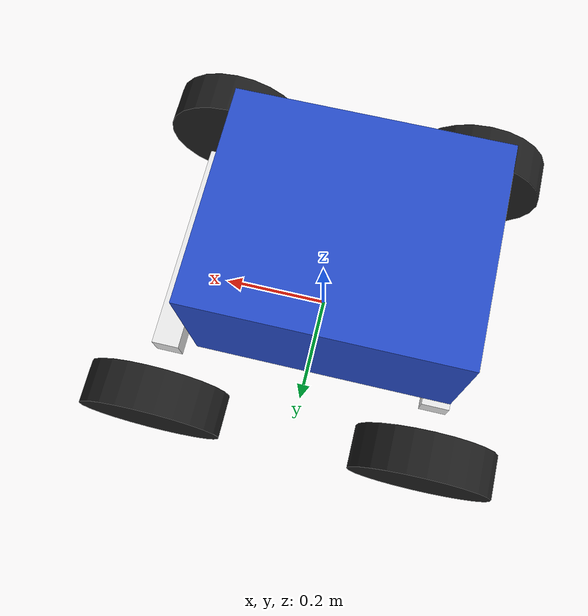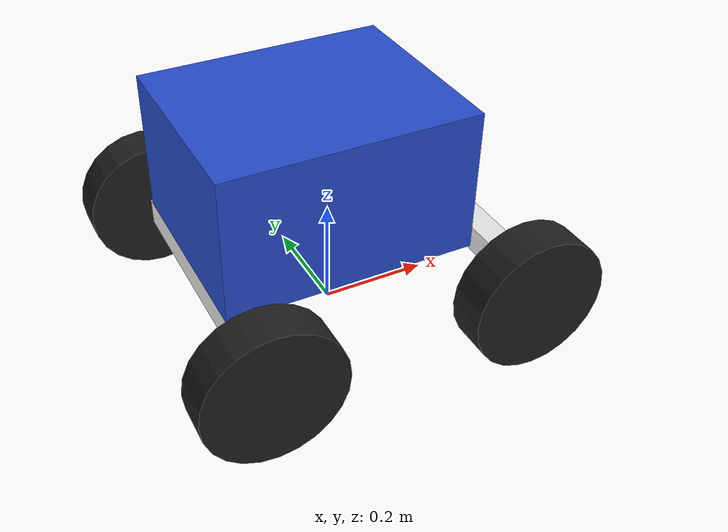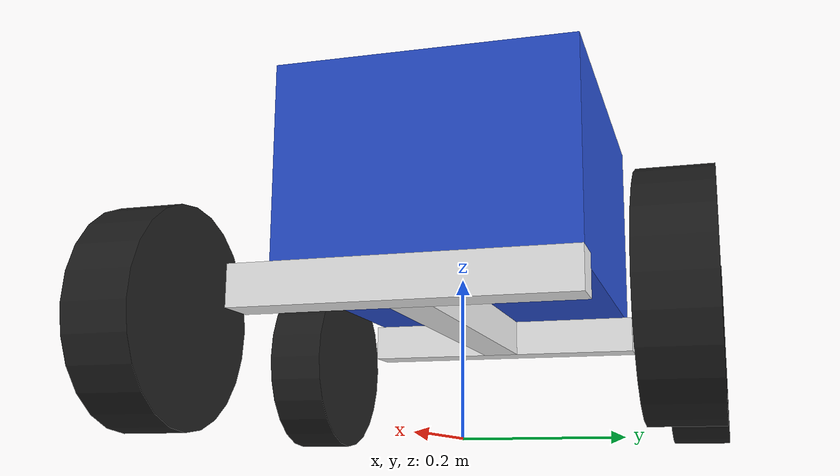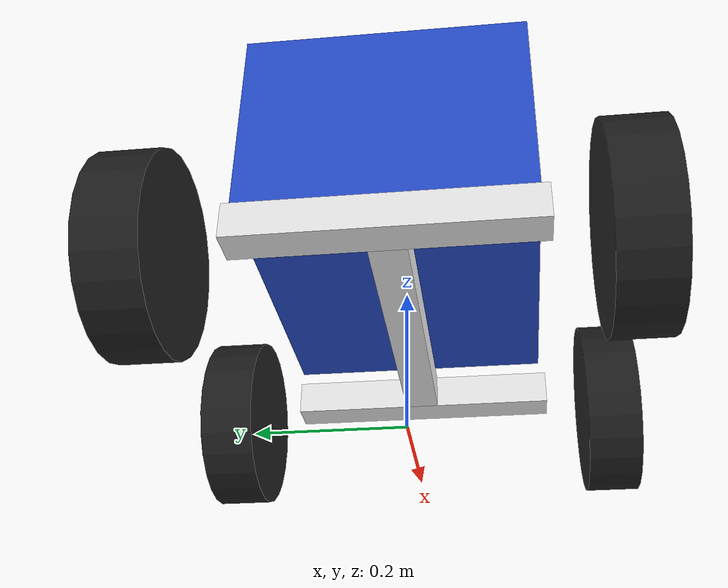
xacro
<?xml version="1.0"?>
<robot xmlns:xacro="http://www.ros.org/wiki/xacro">

    <xacro:include filename="inertial_macros.xacro"/>
<!-- Properties-->
    <!-- Chassis-->

    <xacro:property name="chassis_width" value="0.048"/>    <!-- goBilda U channel width-->
    <xacro:property name="chassis_a_length" value="0.432"/> <!-- goBilda U channel 17 holes-->
    <xacro:property name="chassis_b_length" value="0.384"/> <!-- goBilda U channel 15 holes-->
    <xacro:property name="chassis_mass" value="0.5"/>
    <!-- Wheels-->
    <xacro:property name="wheel_radius" value="0.125"/>
    <xacro:property name="wheel_thickness" value="0.075"/>
    <xacro:property name="wheel_offset_x" value="0.0"/>
    <xacro:property name="wheel_offset_y" value="0.090"/>
    <xacro:property name="wheel_offset_z" value="0.005"/>
    <xacro:property name="wheel_mass" value="0.01"/>

    <!-- BOX-->
    <xacro:property name="box_length" value="0.448"/>       <!-- Box external dim-->
    <xacro:property name="box_width" value="0.363"/>
    <xacro:property name="box_hieght" value="0.258"/>
    <xacro:property name="box_mass" value="0.5"/>

<!-- The Base link will be the center of rotation of the Robot-->

   <link name="base_link">
   </link>

<!-- Y-hassis defintion: The Y-chassis link will be set to be in the bottom rear of it -->
<!-- ychassis joint will be placed on bottom rear-->
<!-- Chassis Shift it up by Wheel hieght-->
   <joint name="ychassis_joint" type="fixed">
    <parent link="base_link"/>
    <child link="ychassis"/>
    <origin xyz="-${chassis_a_length/2} 0 ${wheel_radius+wheel_offset_z}"/> <!-- Center of movement in the middle of robot-->
   </joint>

   <link name="ychassis">
    <visual>
        <origin xyz="${chassis_a_length/2} 0 ${chassis_width/2}" rpy="0 0 0"/> <!-- Shift origin to bottom rear-->
        <geometry>
            <box size="${chassis_a_length} ${chassis_width} ${chassis_width}"/>
        </geometry>
        <material name="white"/>
    </visual>
    <collision>
        <origin xyz="${chassis_a_length/2} 0 ${chassis_width/2}" rpy="0 0 0"/> <!-- Shift origin to bottom rear-->
        <geometry>
            <box size="${chassis_a_length} ${chassis_width} ${chassis_width}"/>
        </geometry>
    </collision>
    <xacro:inertial_box mass="${chassis_mass}" x="${chassis_a_length}" y="${chassis_width}" z="${chassis_width}">
            <origin xyz="${chassis_a_length/2} 0 ${chassis_width/2}" rpy="0 0 0"/>
    </xacro:inertial_box>
   </link>

   <gazebo reference="ychassis">
        <material>Gazebo/White</material>
   </gazebo>

<!-- X_rear chassis defintion: The X rear chassis link will be set to be in the bottom rear of it -->
<!-- ychassis joint will be placed on middle of channel-->
<!-- Chassis Shift it up by Wheel hieght-->
   <joint name="x_rear_chassis_joint" type="fixed">
    <parent link="ychassis"/>
    <child link="x_rear_chassis"/>
    <origin xyz="-${chassis_width} 0 ${chassis_width/2}"/>
   </joint>

   <link name="x_rear_chassis">
    <visual>
        <origin xyz="${chassis_width/2} 0 0" rpy="0 0 0"/>
        <geometry>
            <box size="${chassis_width} ${chassis_b_length} ${chassis_width}"/>
        </geometry>
        <material name="white"/>
    </visual>
     <collision>
        <origin xyz="${chassis_width/2} 0 0" rpy="0 0 0"/>
        <geometry>
            <box size="${chassis_width} ${chassis_b_length} ${chassis_width}"/>
        </geometry>
    </collision>
    <xacro:inertial_box mass="${chassis_mass}" x="${chassis_width}" y="${chassis_b_length}" z="${chassis_width}">
            <origin xyz="${chassis_width/2} 0 0" rpy="0 0 0"/>
    </xacro:inertial_box>
   </link>
   <gazebo reference="x_rear_chassis">
        <material>Gazebo/White</material>
   </gazebo>

<!-- X_front chassis defintion: The X front chassis link will be set to be in the bottom rear of it -->
<!-- ychassis joint will be placed on middle of channel to support movment-->
<!-- Chassis Shift it up by Wheel hieght-->
   <joint name="x_front_chassis_joint" type="revolute"> <!--revolute-->
    <parent link="ychassis"/>
    <child link="x_front_chassis"/>
    <origin xyz="${chassis_a_length} 0 ${chassis_width/2}"/>
    <limit lower="-0.7854" upper="0.7854" effort="10" velocity="3"/>  <!-- 1/4 of Cricle limits-->
    <axis xyz="1 0 0"/>
   </joint>

   <link name="x_front_chassis">
    <visual>
        <origin xyz="${chassis_width/2} 0 0" rpy="0 0 0"/>
        <geometry>
            <box size="${chassis_width} ${chassis_b_length} ${chassis_width}"/>
        </geometry>
        <material name="white"/>
    </visual>
    <collision>
        <origin xyz="${chassis_width/2} 0 0" rpy="0 0 0"/>
        <geometry>
            <box size="${chassis_width} ${chassis_b_length} ${chassis_width}"/>
        </geometry>
    </collision>
    <xacro:inertial_box mass="${chassis_mass}" x="${chassis_width}" y="${chassis_b_length}" z="${chassis_width}">
            <origin xyz="${chassis_width/2} 0 0" rpy="0 0 0"/>
    </xacro:inertial_box>
   </link>
   <gazebo reference="x_front_chassis">
        <material>Gazebo/White</material>
   </gazebo>

<!-- Box defintion: The box link will be set to be in the bottom rear of it -->
<!-- box joint will be placed on bottom rear-->
<!-- box Shift it up by chassis hieght-->
   <joint name="box_joint" type="fixed">
    <parent link="ychassis"/>
    <child link="box_chassis"/>
    <origin xyz="-${chassis_width} 0 ${chassis_width}"/>
   </joint>

   <link name="box_chassis">
    <visual>
        <origin xyz="${box_length/2} 0 ${box_hieght/2}" rpy="0 0 0"/>
        <geometry>
            <box size="${box_length} ${box_width} ${box_hieght}"/>
        </geometry>
        <material name="blue"/>
    </visual>
    <collision>
        <origin xyz="${box_length/2} 0 ${box_hieght/2}" rpy="0 0 0"/>
        <geometry>
            <box size="${box_length} ${box_width} ${box_hieght}"/>
        </geometry>
    </collision>
    <xacro:inertial_box mass="${box_mass}" x="${box_length}" y="${box_width}" z="${box_hieght}">
        <origin xyz="${box_length/2} 0 ${box_hieght/2}" rpy="0 0 0"/>
    </xacro:inertial_box>
   </link>
   <gazebo reference="box_chassis">
        <material>Gazebo/Blue</material>
   </gazebo>

<!-- LEFT REAR WHEEL -->

    <joint name="left_rear_wheel_joint" type="continuous"> <!-- change to continuous-->
        <parent link="x_rear_chassis"/>
        <child link="left_rear_wheel"/>
        <origin xyz="${chassis_width/2+wheel_offset_x} ${chassis_b_length/2+wheel_offset_y} -${chassis_width/2+wheel_offset_z}" rpy="-${pi/2} 0 0"/>
        <axis xyz="0 0 1"/> <!-- rotation Axis-->
    </joint>

    <link name="left_rear_wheel">
        <visual>
            <geometry>
                <cylinder radius="${wheel_radius}" length="${wheel_thickness}"/>
            </geometry>
            <material name="black"/>
        </visual>
        <collision>
            <geometry>
                <cylinder radius="${wheel_radius}" length="${wheel_thickness}"/>
            </geometry>
        </collision>
        <xacro:inertial_cylinder mass="${wheel_mass}" length="${wheel_thickness}" radius="${wheel_radius}">
            <origin xyz="0 0 0" rpy="0 0 0"/>
        </xacro:inertial_cylinder>
    </link>
    <gazebo reference="left_rear_wheel">
        <material>Gazebo/Black</material>
    </gazebo>

<!-- RIGHT REAR WHEEL -->

    <joint name="right_rear_wheel_joint" type="continuous"> <!-- change to continuous-->
        <parent link="x_rear_chassis"/>
        <child link="right_rear_wheel"/>
        <origin xyz="${chassis_width/2+wheel_offset_x} -${chassis_b_length/2+wheel_offset_y} -${chassis_width/2+wheel_offset_z}" rpy="${pi/2} 0 0"/>
        <axis xyz="0 0 -1"/> <!-- rotation Axis-->
    </joint>

    <link name="right_rear_wheel">
        <visual>
            <geometry>
                <cylinder radius="${wheel_radius}" length="${wheel_thickness}"/>
            </geometry>
            <material name="black"/>
        </visual>
        <collision>
            <geometry>
                <cylinder radius="${wheel_radius}" length="${wheel_thickness}"/>
            </geometry>
        </collision>
        <xacro:inertial_cylinder mass="${wheel_mass}" length="${wheel_thickness}" radius="${wheel_radius}">
            <origin xyz="0 0 0" rpy="0 0 0"/>
        </xacro:inertial_cylinder>
    </link>
    <gazebo reference="right_rear_wheel">
        <material>Gazebo/Black</material>
    </gazebo>

<!-- LEFT FRONT WHEEL -->

    <joint name="left_front_wheel_joint" type="continuous"> <!-- change to continuous-->
        <parent link="x_front_chassis"/>
        <child link="left_front_wheel"/>
        <origin xyz="${chassis_width/2+wheel_offset_x} ${chassis_b_length/2+wheel_offset_y} -${chassis_width/2+wheel_offset_z}" rpy="-${pi/2} 0 0"/>
        <axis xyz="0 0 1"/> <!-- rotation Axis-->
    </joint>

    <link name="left_front_wheel">
        <visual>
            <geometry>
                <cylinder radius="${wheel_radius}" length="${wheel_thickness}"/>
            </geometry>
            <material name="black"/>
        </visual>
        <collision>
            <geometry>
                <cylinder radius="${wheel_radius}" length="${wheel_thickness}"/>
            </geometry>
        </collision>
        <xacro:inertial_cylinder mass="${wheel_mass}" length="${wheel_thickness}" radius="${wheel_radius}">
            <origin xyz="0 0 0" rpy="0 0 0"/>
        </xacro:inertial_cylinder>
    </link>
    <gazebo reference="left_front_wheel">
        <material>Gazebo/Black</material>
    </gazebo>

<!-- RIGHT FRONT WHEEL -->

    <joint name="right_front_wheel_joint" type="continuous"> <!-- change to continuous-->
        <parent link="x_front_chassis"/>
        <child link="right_front_wheel"/>
        <origin xyz="${chassis_width/2+wheel_offset_x} -${chassis_b_length/2+wheel_offset_y} -${chassis_width/2+wheel_offset_z}" rpy="${pi/2} 0 0"/>
        <axis xyz="0 0 -1"/> <!-- rotation Axis-->
    </joint>

    <link name="right_front_wheel">
        <visual>
            <geometry>
                <cylinder radius="${wheel_radius}" length="${wheel_thickness}"/>
            </geometry>
            <material name="black"/>
        </visual>
        <collision>
            <geometry>
                <cylinder radius="${wheel_radius}" length="${wheel_thickness}"/>
            </geometry>
        </collision>
        <xacro:inertial_cylinder mass="${wheel_mass}" length="${wheel_thickness}" radius="${wheel_radius}">
            <origin xyz="0 0 0" rpy="0 0 0"/>
        </xacro:inertial_cylinder>
    </link>
    <gazebo reference="right_front_wheel">
        <material>Gazebo/Black</material>
    </gazebo>
</robot>
